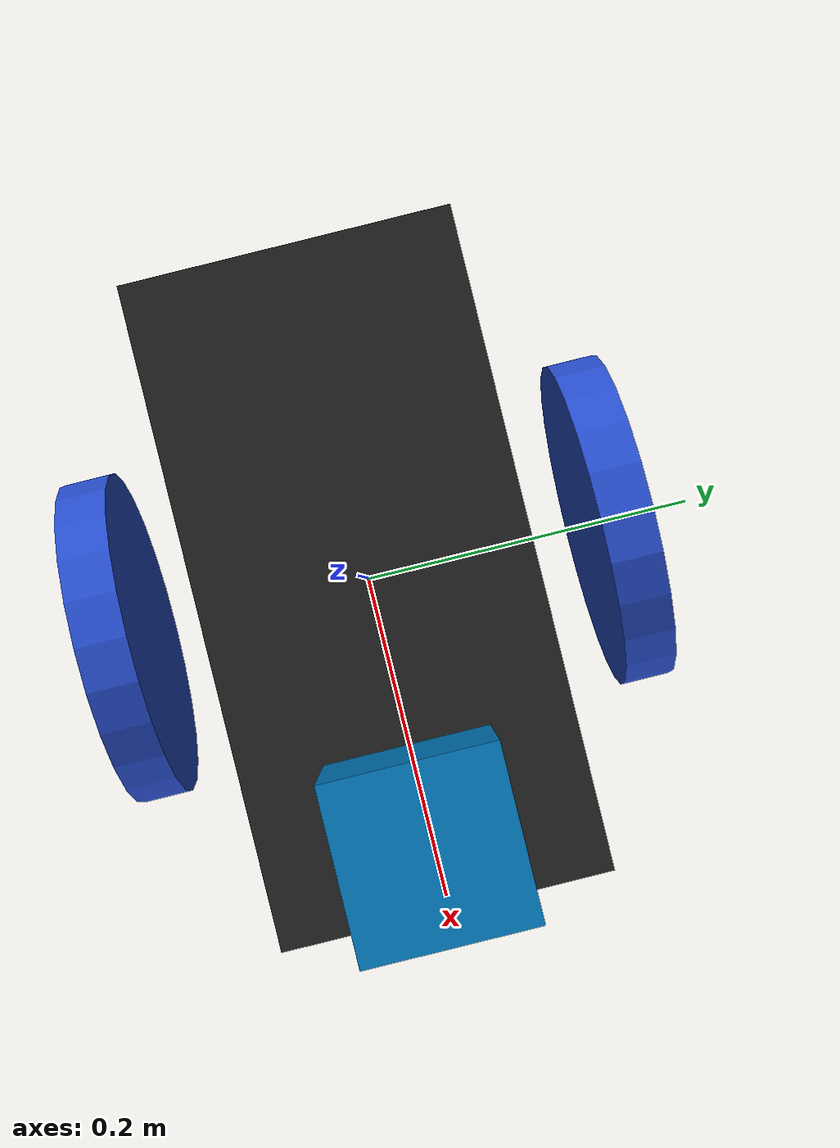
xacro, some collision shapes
<?xml version='1.0'?>

<robot name="my_robot" xmlns:xacro="http://www.ros.org/wiki/xacro">

  <xacro:include filename="$(find my_robot)/urdf/my_robot.gazebo" />
  <link name="robot_footprint"></link>

  <gazebo reference="left_wheel">
    <material>Gazebo/Blue</material>
  </gazebo>

  <gazebo reference="right_wheel">
    <material>Gazebo/Blue</material>
  </gazebo>

  <gazebo reference="camera">
    <material>Gazebo/Red</material>
  </gazebo>

  <gazebo reference="chassis">
    <material>Gazebo/Black</material>
  </gazebo>

  <joint name="robot_footprint_joint" type="fixed">
    <origin xyz="0 0 0" rpy="0 0 0" />
    <parent link="robot_footprint"/>
    <child link="chassis" />
  </joint>

  <link name="left_wheel">
  <geometry>
        <cylinder radius="0.1" length="0.05"/>
      </geometry>
    <inertial>
      <mass value="5"/>
      <origin xyz="0 0 0" rpy="0 1.5707 1.5707"/>
      <inertia
        ixx="0.1" ixy="0.0" ixz="0.0"
        iyy="0.1" iyz="0.0"
        izz="0.1"
      />
    </inertial>

    <collision>
      <origin xyz="0 0 0" rpy="0 1.5707 1.5707"/>
      <geometry>
        <cylinder radius="0.1" length="0.05"/>
      </geometry>
    </collision>

    <visual>
      <origin xyz="0 0 0" rpy="0 1.5707 1.5707"/>
      <geometry>
        <cylinder radius="0.1" length="0.03"/>
      </geometry>
    </visual>

  </link>

<joint type="continuous" name="left_wheel_hinge">
    <origin xyz="0 0.15 0" rpy="0 0 0"/>
    <child link="left_wheel"/>
    <parent link="chassis"/>
    <axis xyz="0 1 0" rpy="0 0 0"/>
    <limit effort="10000" velocity="1000"/>
    <dynamics damping="1.0" friction="1.0"/>
  </joint>

<link name="right_wheel">
  <geometry>
        <cylinder radius="0.1" length="0.03"/>
      </geometry>
    <inertial>
      <mass value="5"/>
      <origin xyz="0 0 0" rpy="0 1.5707 1.5707"/>
      <inertia
        ixx="0.1" ixy="0.0" ixz="0.0"
        iyy="0.1" iyz="0.0"
        izz="0.1"
      />
    </inertial>

    <collision>
      <origin xyz="0 0 0" rpy="0 1.5707 1.5707"/>
      <geometry>
        <cylinder radius="0.1" length="0.03"/>
      </geometry>
    </collision>

    <visual>
      <origin xyz="0 0 0" rpy="0 1.5707 1.5707"/>
      <geometry>
        <cylinder radius="0.1" length="0.03"/>
      </geometry>
    </visual>

  </link>

<joint type="continuous" name="right_wheel_hinge">
    <origin xyz="0 -0.15 0" rpy="0 0 0"/>
    <child link="right_wheel"/>
    <parent link="chassis"/>
    <axis xyz="0 1 0" rpy="0 0 0"/>
    <limit effort="10000" velocity="1000"/>
    <dynamics damping="1.0" friction="1.0"/>
  </joint>

<link name="camera">
    <inertial>
    <origin xyz="0 0 0" rpy="0 0 0"/>
     <geometry>
        <box size="0.05 0.05 0.05"/>
      </geometry>
      <mass value="0.1"/>
      <inertia
        ixx="1e-6" ixy="0.0" ixz="0.0"
        iyy="1e-6" iyz="0.0"
        izz="1e-6"
      />
    </inertial>

    <collision>
      <origin xyz="0 0 0" rpy="0 0 0"/>
      <geometry>
        <box size="0.05 0.05 0.05"/>
      </geometry>
    </collision>

    <visual>
      <origin xyz="0 0 0" rpy="0 0 0"/>
      <geometry>
        <box size="0.05 0.05 0.05"/>
      </geometry>
    </visual>

  </link>

  <joint name="camera_joint" type="fixed">
    <axis xyz="0 1 0"/>
    <origin xyz="0.2 0 0" rpy="0 0 0" />
    <parent link="chassis"/>
    <child link="camera" />
  </joint>

  <link name="hokuyo">
  <origin xyz="0 0 0" rpy="0 0 0"/>
    <inertial>
      <mass value="1e-5"/>
      <inertia
        ixx="1e-6" ixy="0.0" ixz="0.0"
        iyy="1e-6" iyz="0.0"
        izz="1e-6"
      />
    </inertial>

    <collision>
      <origin xyz="0 0 0" rpy="0 0 0"/>
      <geometry>
        <box size="0.1 0.1 0.1"/>
      </geometry>
    </collision>

    <visual>
      <origin xyz="0 0 0" rpy="0 0 0"/>
      <geometry>
        <mesh filename="package://my_robot/meshes/hokuyo.dae"/>
      </geometry>
    </visual>

  </link>

  <joint name="hokuyo_joint" type="fixed">
    <axis xyz="0 1 0"/>
    <origin xyz="0.15 0 0.1" rpy="0 0 0" />
    <parent link="chassis"/>
    <child link="hokuyo" />
  </joint>

  <link name='chassis'>
    <pose>0 0 0.1 0 0 0</pose>

    <inertial>
      <mass value="15.0"/>
      <origin xyz="0.0 0 0" rpy=" 0 0 0"/>
      <inertia
          ixx="0.1" ixy="0" ixz="0"
          iyy="0.1" iyz="0"
          izz="0.1"
      />
    </inertial>

    <collision name='collision'>
      <origin xyz="0 0 0" rpy=" 0 0 0"/>
      <geometry>
        <box size=".4 .2 .1"/>
      </geometry>
    </collision>

    <visual name='chassis_visual'>
      <origin xyz="0 0 0" rpy=" 0 0 0"/>
      <geometry>
        <box size=".4 .2 .1"/>
      </geometry>
    </visual>

    <collision name='back_caster_collision'>
      <origin xyz="-0.15 0 -0.05" rpy=" 0 0 0"/>
      <geometry>
        <sphere radius="0.0499"/>
      </geometry>
    </collision>

    <visual name='back_caster_visual'>
      <origin xyz="-0.15 0 -0.05" rpy=" 0 0 0"/>
      <geometry>
        <sphere radius="0.05"/>
      </geometry>
    </visual>

    <collision name='front_caster_collision'>
      <origin xyz="0.15 0 -0.05" rpy=" 0 0 0"/>
      <geometry>
        <sphere radius="0.0499"/>
      </geometry>
    </collision>

    <visual name='front_caster_visual'>
      <origin xyz="0.15 0 -0.05" rpy=" 0 0 0"/>
      <geometry>
        <sphere radius="0.05"/>
      </geometry>
    </visual>

  </link>

</robot>
